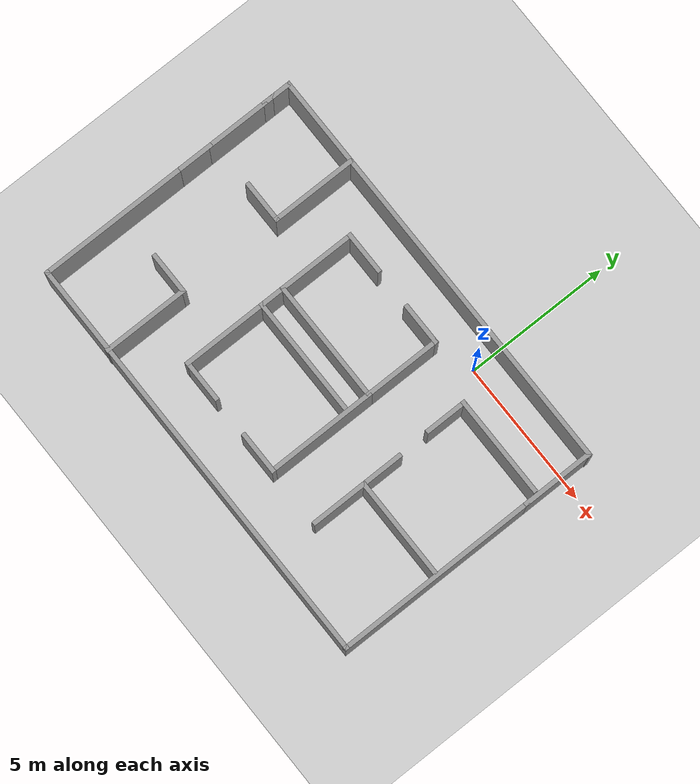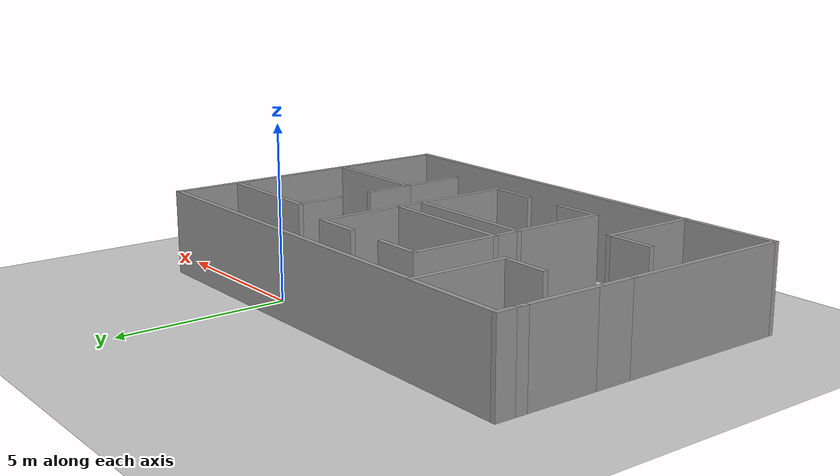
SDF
<sdf version="1.7">
 <world name="default">
  <scene><ambient>0.4 0.4 0.4 1</ambient><background>0.7 0.7 0.7 1</background><shadows>1</shadows></scene>
  <light name="sun" type="directional">
   <pose>0 0 10 0 -0 0</pose>
   <diffuse>0.8 0.8 0.8 1</diffuse>
   <specular>0.2 0.2 0.2 1</specular>
   <attenuation>
    <range>1000</range>
    <constant>0.9</constant>
    <linear>0.01</linear>
    <quadratic>0.001</quadratic>
   </attenuation>
   <direction>-0.5 0.1 -0.9</direction>
   <spot><inner_angle>0</inner_angle><outer_angle>0</outer_angle><falloff>0</falloff></spot>
  </light>
  <model name="ground_plane">
   <static>1</static>
   <link name="link">
    <collision name="collision">
     <geometry><plane><normal>0 0 1</normal><size>100 100</size></plane></geometry>
     <surface><friction><ode><mu>100</mu><mu2>50</mu2></ode></friction></surface>
    </collision>
    <visual name="visual">
     <cast_shadows>0</cast_shadows>
     <geometry><plane><normal>0 0 1</normal><size>100 100</size></plane></geometry>
     <material>
      <script><uri>file://media/materials/scripts/gazebo.material</uri><name>Gazebo/Grey</name></script>
     </material>
    </visual>
   </link>
  </model>
  <physics type="ode">
   <real_time_update_rate>0</real_time_update_rate>
   <max_step_size>0.001</max_step_size>
   <real_time_factor>1</real_time_factor>
   <ode>
    <solver>
     <type>quick</type>
     <iters>150</iters>
     <precon_iters>0</precon_iters>
     <sor>1.4</sor>
     <use_dynamic_moi_rescaling>1</use_dynamic_moi_rescaling>
    </solver>
    <constraints>
     <cfm>1e-05</cfm>
     <erp>0.2</erp>
     <contact_max_correcting_vel>2000</contact_max_correcting_vel>
     <contact_surface_layer>0.01</contact_surface_layer>
    </constraints>
   </ode>
  </physics>
  <gravity>0 0 -9.8</gravity>
  <magnetic_field>6e-06 2.3e-05 -4.2e-05</magnetic_field>
  <atmosphere type="adiabatic"/>
  <spherical_coordinates>
   <surface_model>EARTH_WGS84</surface_model>
   <latitude_deg>0</latitude_deg>
   <longitude_deg>0</longitude_deg>
   <elevation>0</elevation>
   <heading_deg>0</heading_deg>
  </spherical_coordinates>
  <model name="half_square">
   <pose>-2.87363 -3.76482 0 0 -0 0</pose>
   <link name="Wall_0">
    <collision name="Wall_0_Collision">
     <geometry><box><size>14.5 0.15 2.5</size></box></geometry>
     <pose>0 0 1.25 0 -0 0</pose>
    </collision>
    <visual name="Wall_0_Visual">
     <pose>0 0 1.25 0 -0 0</pose>
     <geometry><box><size>14.5 0.15 2.5</size></box></geometry>
     <material>
      <script><uri>file://media/materials/scripts/gazebo.material</uri><name>Gazebo/Grey</name></script>
      <ambient>1 1 1 1</ambient>
     </material>
     <meta><layer>0</layer></meta>
    </visual>
    <pose>-0.010056 -4.61503 0 0 -0 0</pose>
   </link>
   <link name="Wall_11">
    <collision name="Wall_11_Collision">
     <geometry><box><size>2.5 0.15 2.5</size></box></geometry>
     <pose>0 0 1.25 0 -0 0</pose>
    </collision>
    <visual name="Wall_11_Visual">
     <pose>0 0 1.25 0 -0 0</pose>
     <geometry><box><size>2.5 0.15 2.5</size></box></geometry>
     <material>
      <script><uri>file://media/materials/scripts/gazebo.material</uri><name>Gazebo/Grey</name></script>
      <ambient>1 1 1 1</ambient>
     </material>
     <meta><layer>0</layer></meta>
    </visual>
    <pose>7.16494 3.40997 0 0 -0 1.5708</pose>
   </link>
   <link name="Wall_13">
    <collision name="Wall_13_Collision">
     <geometry><box><size>0.730235 0.15 2.5</size></box></geometry>
     <pose>0 0 1.25 0 -0 0</pose>
    </collision>
    <visual name="Wall_13_Visual">
     <pose>0 0 1.25 0 -0 0</pose>
     <geometry><box><size>0.730235 0.15 2.5</size></box></geometry>
     <material>
      <script><uri>file://media/materials/scripts/gazebo.material</uri><name>Gazebo/Grey</name></script>
      <ambient>1 1 1 1</ambient>
     </material>
     <meta><layer>0</layer></meta>
    </visual>
    <pose>-7.18506 4.32491 0 0 -0 1.5708</pose>
   </link>
   <link name="Wall_14">
    <collision name="Wall_14_Collision">
     <geometry><box><size>14.5 0.15 2.5</size></box></geometry>
     <pose>0 0 1.25 0 -0 0</pose>
    </collision>
    <visual name="Wall_14_Visual">
     <pose>0 0 1.25 0 -0 0</pose>
     <geometry><box><size>14.5 0.15 2.5</size></box></geometry>
     <material>
      <script><uri>file://media/materials/scripts/gazebo.material</uri><name>Gazebo/Grey</name></script>
      <ambient>1 1 1 1</ambient>
     </material>
     <meta><layer>0</layer></meta>
    </visual>
    <pose>0.010057 4.61486 0 0 -0 0</pose>
   </link>
   <link name="Wall_2">
    <collision name="Wall_2_Collision">
     <geometry><box><size>5.25 0.15 2.5</size></box></geometry>
     <pose>0 0 1.25 0 -0 0</pose>
    </collision>
    <visual name="Wall_2_Visual">
     <pose>0 0 1.25 0 -0 0</pose>
     <geometry><box><size>5.25 0.15 2.5</size></box></geometry>
     <material>
      <script><uri>file://media/materials/scripts/gazebo.material</uri><name>Gazebo/Grey</name></script>
      <ambient>1 1 1 1</ambient>
     </material>
     <meta><layer>0</layer></meta>
    </visual>
    <pose>-7.18506 -2.06503 0 0 -0 1.5708</pose>
   </link>
   <link name="Wall_4">
    <collision name="Wall_4_Collision">
     <geometry><box><size>7 0.15 2.5</size></box></geometry>
     <pose>0 0 1.25 0 -0 0</pose>
    </collision>
    <visual name="Wall_4_Visual">
     <pose>0 0 1.25 0 -0 0</pose>
     <geometry><box><size>7 0.15 2.5</size></box></geometry>
     <material>
      <script><uri>file://media/materials/scripts/gazebo.material</uri><name>Gazebo/Grey</name></script>
      <ambient>1 1 1 1</ambient>
     </material>
     <meta><layer>0</layer></meta>
    </visual>
    <pose>7.16494 -1.19003 0 0 -0 1.5708</pose>
   </link>
   <link name="Wall_6">
    <collision name="Wall_6_Collision">
     <geometry><box><size>1.25 0.15 2.5</size></box></geometry>
     <pose>0 0 1.25 0 -0 0</pose>
    </collision>
    <visual name="Wall_6_Visual">
     <pose>0 0 1.25 0 -0 0</pose>
     <geometry><box><size>1.25 0.15 2.5</size></box></geometry>
     <material>
      <script><uri>file://media/materials/scripts/gazebo.material</uri><name>Gazebo/Grey</name></script>
      <ambient>1 1 1 1</ambient>
     </material>
     <meta><layer>0</layer></meta>
    </visual>
    <pose>-7.18506 1.03497 0 0 -0 1.5708</pose>
   </link>
   <link name="Wall_8">
    <collision name="Wall_8_Collision">
     <geometry><box><size>2.25 0.15 2.5</size></box></geometry>
     <pose>0 0 1.25 0 -0 0</pose>
    </collision>
    <visual name="Wall_8_Visual">
     <pose>0 0 1.25 0 -0 0</pose>
     <geometry><box><size>2.25 0.15 2.5</size></box></geometry>
     <material>
      <script><uri>file://media/materials/scripts/gazebo.material</uri><name>Gazebo/Grey</name></script>
      <ambient>1 1 1 1</ambient>
     </material>
     <meta><layer>0</layer></meta>
    </visual>
    <pose>-7.18506 2.63497 0 0 -0 1.5708</pose>
   </link>
   <link name="Wall_9">
    <collision name="Wall_9_Collision">
     <geometry><box><size>0.5 0.15 2.5</size></box></geometry>
     <pose>0 0 1.25 0 -0 0</pose>
    </collision>
    <visual name="Wall_9_Visual">
     <pose>0 0 1.25 0 -0 0</pose>
     <geometry><box><size>0.5 0.15 2.5</size></box></geometry>
     <material>
      <script><uri>file://media/materials/scripts/gazebo.material</uri><name>Gazebo/Grey</name></script>
      <ambient>1 1 1 1</ambient>
     </material>
     <meta><layer>0</layer></meta>
    </visual>
    <pose>-7.18506 3.85997 0 0 -0 1.5708</pose>
   </link>
   <static>1</static>
  </model>
  <plugin name="gazebo_occupancy_map" filename="libgazebo_2Dmap_plugin.so">
   <map_resolution>0.02</map_resolution>
   <map_height>0.7</map_height>
   <map_size_x>20</map_size_x>
   <map_size_y>20</map_size_y>
   <init_robot_x>0</init_robot_x>
   <init_robot_y>0</init_robot_y>
  </plugin>
  <model name="simple_office_walls">
   <pose>-2.13667 -3.77716 0 0 -0 0</pose>
   <link name="Wall_10">
    <collision name="Wall_10_Collision">
     <geometry><box><size>2.68911 0.15 2.5</size></box></geometry>
     <pose>0 0 1.25 0 -0 0</pose>
    </collision>
    <visual name="Wall_10_Visual">
     <pose>0 0 1.25 0 -0 0</pose>
     <geometry><box><size>2.68911 0.15 2.5</size></box></geometry>
     <material>
      <script><uri>file://media/materials/scripts/gazebo.material</uri><name>Gazebo/Grey</name></script>
      <ambient>1 1 1 1</ambient>
     </material>
     <meta><layer>0</layer></meta>
    </visual>
    <pose>0.948362 1.90366 0 0 -0 1.5708</pose>
   </link>
   <link name="Wall_12">
    <collision name="Wall_12_Collision">
     <geometry><box><size>2.70781 0.15 2.5</size></box></geometry>
     <pose>0 0 1.25 0 -0 0</pose>
    </collision>
    <visual name="Wall_12_Visual">
     <pose>0 0 1.25 0 -0 0</pose>
     <geometry><box><size>2.70781 0.15 2.5</size></box></geometry>
     <material>
      <script><uri>file://media/materials/scripts/gazebo.material</uri><name>Gazebo/Grey</name></script>
      <ambient>1 1 1 1</ambient>
     </material>
     <meta><layer>0</layer></meta>
    </visual>
    <pose>-3.15164 1.91301 0 0 -0 1.5708</pose>
   </link>
   <link name="Wall_13">
    <collision name="Wall_13_Collision">
     <geometry><box><size>1.5 0.15 2.5</size></box></geometry>
     <pose>0 0 1.25 0 -0 0</pose>
    </collision>
    <visual name="Wall_13_Visual">
     <pose>0 0 1.25 0 -0 0</pose>
     <geometry><box><size>1.5 0.15 2.5</size></box></geometry>
     <material>
      <script><uri>file://media/materials/scripts/gazebo.material</uri><name>Gazebo/Grey</name></script>
      <ambient>1 1 1 1</ambient>
     </material>
     <meta><layer>0</layer></meta>
    </visual>
    <pose>-2.47664 3.19192 0 0 -0 0</pose>
   </link>
   <link name="Wall_15">
    <collision name="Wall_15_Collision">
     <geometry><box><size>1.5 0.15 2.5</size></box></geometry>
     <pose>0 0 1.25 0 -0 0</pose>
    </collision>
    <visual name="Wall_15_Visual">
     <pose>0 0 1.25 0 -0 0</pose>
     <geometry><box><size>1.5 0.15 2.5</size></box></geometry>
     <material>
      <script><uri>file://media/materials/scripts/gazebo.material</uri><name>Gazebo/Grey</name></script>
      <ambient>1 1 1 1</ambient>
     </material>
     <meta><layer>0</layer></meta>
    </visual>
    <pose>0.273362 3.17322 0 0 -0 3.14159</pose>
   </link>
   <link name="Wall_17">
    <collision name="Wall_17_Collision">
     <geometry><box><size>3.81532 0.15 2.5</size></box></geometry>
     <pose>0 0 1.25 0 -0 0</pose>
    </collision>
    <visual name="Wall_17_Visual">
     <pose>0 0 1.25 0 -0 0</pose>
     <geometry><box><size>3.81532 0.15 2.5</size></box></geometry>
     <material>
      <script><uri>file://media/materials/scripts/gazebo.material</uri><name>Gazebo/Grey</name></script>
      <ambient>1 1 1 1</ambient>
     </material>
     <meta><layer>0</layer></meta>
    </visual>
    <pose>0.948362 -1.19855 0 0 -0 -1.5708</pose>
   </link>
   <link name="Wall_2">
    <collision name="Wall_2_Collision">
     <geometry><box><size>3.5 0.15 2.5</size></box></geometry>
     <pose>0 0 1.25 0 -0 0</pose>
    </collision>
    <visual name="Wall_2_Visual">
     <pose>0 0 1.25 0 -0 0</pose>
     <geometry><box><size>3.5 0.15 2.5</size></box></geometry>
     <material>
      <script><uri>file://media/materials/scripts/gazebo.material</uri><name>Gazebo/Grey</name></script>
      <ambient>1 1 1 1</ambient>
     </material>
     <meta><layer>0</layer></meta>
    </visual>
    <pose>4.58612 2.68254 0 0 -0 0</pose>
   </link>
   <link name="Wall_20">
    <collision name="Wall_20_Collision">
     <geometry><box><size>3.79219 0.15 2.5</size></box></geometry>
     <pose>0 0 1.25 0 -0 0</pose>
    </collision>
    <visual name="Wall_20_Visual">
     <pose>0 0 1.25 0 -0 0</pose>
     <geometry><box><size>3.79219 0.15 2.5</size></box></geometry>
     <material>
      <script><uri>file://media/materials/scripts/gazebo.material</uri><name>Gazebo/Grey</name></script>
      <ambient>1 1 1 1</ambient>
     </material>
     <meta><layer>0</layer></meta>
    </visual>
    <pose>-3.15164 -1.18699 0 0 -0 -1.5708</pose>
   </link>
   <link name="Wall_22">
    <collision name="Wall_22_Collision">
     <geometry><box><size>1.5 0.15 2.5</size></box></geometry>
     <pose>0 0 1.25 0 -0 0</pose>
    </collision>
    <visual name="Wall_22_Visual">
     <pose>0 0 1.25 0 -0 0</pose>
     <geometry><box><size>1.5 0.15 2.5</size></box></geometry>
     <material>
      <script><uri>file://media/materials/scripts/gazebo.material</uri><name>Gazebo/Grey</name></script>
      <ambient>1 1 1 1</ambient>
     </material>
     <meta><layer>0</layer></meta>
    </visual>
    <pose>-2.47664 -3.00808 0 0 -0 0</pose>
   </link>
   <link name="Wall_24">
    <collision name="Wall_24_Collision">
     <geometry><box><size>1.5 0.15 2.5</size></box></geometry>
     <pose>0 0 1.25 0 -0 0</pose>
    </collision>
    <visual name="Wall_24_Visual">
     <pose>0 0 1.25 0 -0 0</pose>
     <geometry><box><size>1.5 0.15 2.5</size></box></geometry>
     <material>
      <script><uri>file://media/materials/scripts/gazebo.material</uri><name>Gazebo/Grey</name></script>
      <ambient>1 1 1 1</ambient>
     </material>
     <meta><layer>0</layer></meta>
    </visual>
    <pose>0.273362 -3.03121 0 0 -0 3.14159</pose>
   </link>
   <link name="Wall_27">
    <collision name="Wall_27_Collision">
     <geometry><box><size>3 0.15 2.5</size></box></geometry>
     <pose>0 0 1.25 0 -0 0</pose>
    </collision>
    <visual name="Wall_27_Visual">
     <pose>0 0 1.25 0 -0 0</pose>
     <geometry><box><size>3 0.15 2.5</size></box></geometry>
     <material>
      <script><uri>file://media/materials/scripts/gazebo.material</uri><name>Gazebo/Grey</name></script>
      <ambient>1 1 1 1</ambient>
     </material>
     <meta><layer>0</layer></meta>
    </visual>
    <pose>-4.95484 -3.19705 0 0 -0 1.5708</pose>
   </link>
   <link name="Wall_29">
    <collision name="Wall_29_Collision">
     <geometry><box><size>1.5 0.15 2.5</size></box></geometry>
     <pose>0 0 1.25 0 -0 0</pose>
    </collision>
    <visual name="Wall_29_Visual">
     <pose>0 0 1.25 0 -0 0</pose>
     <geometry><box><size>1.5 0.15 2.5</size></box></geometry>
     <material>
      <script><uri>file://media/materials/scripts/gazebo.material</uri><name>Gazebo/Grey</name></script>
      <ambient>1 1 1 1</ambient>
     </material>
     <meta><layer>0</layer></meta>
    </visual>
    <pose>-5.62984 -1.77205 0 0 -0 3.14159</pose>
   </link>
   <link name="Wall_31">
    <collision name="Wall_31_Collision">
     <geometry><box><size>3 0.15 2.5</size></box></geometry>
     <pose>0 0 1.25 0 -0 0</pose>
    </collision>
    <visual name="Wall_31_Visual">
     <pose>0 0 1.25 0 -0 0</pose>
     <geometry><box><size>3 0.15 2.5</size></box></geometry>
     <material>
      <script><uri>file://media/materials/scripts/gazebo.material</uri><name>Gazebo/Grey</name></script>
      <ambient>1 1 1 1</ambient>
     </material>
     <meta><layer>0</layer></meta>
    </visual>
    <pose>-4.91332 3.19705 0 0 -0 1.5708</pose>
   </link>
   <link name="Wall_33">
    <collision name="Wall_33_Collision">
     <geometry><box><size>1.5 0.15 2.5</size></box></geometry>
     <pose>0 0 1.25 0 -0 0</pose>
    </collision>
    <visual name="Wall_33_Visual">
     <pose>0 0 1.25 0 -0 0</pose>
     <geometry><box><size>1.5 0.15 2.5</size></box></geometry>
     <material>
      <script><uri>file://media/materials/scripts/gazebo.material</uri><name>Gazebo/Grey</name></script>
      <ambient>1 1 1 1</ambient>
     </material>
     <meta><layer>0</layer></meta>
    </visual>
    <pose>-5.58832 1.77205 0 0 -0 3.14159</pose>
   </link>
   <link name="Wall_35">
    <collision name="Wall_35_Collision">
     <geometry><box><size>2 0.15 2.5</size></box></geometry>
     <pose>0 0 1.25 0 -0 0</pose>
    </collision>
    <visual name="Wall_35_Visual">
     <pose>0 0 1.25 0 -0 0</pose>
     <geometry><box><size>2 0.15 2.5</size></box></geometry>
     <material>
      <script><uri>file://media/materials/scripts/gazebo.material</uri><name>Gazebo/Grey</name></script>
      <ambient>1 1 1 1</ambient>
     </material>
     <meta><layer>0</layer></meta>
    </visual>
    <pose>2.95484 -2.09056 0 0 -0 -1.5708</pose>
   </link>
   <link name="Wall_37">
    <collision name="Wall_37_Collision">
     <geometry><box><size>4.25 0.15 2.5</size></box></geometry>
     <pose>0 0 1.25 0 -0 0</pose>
    </collision>
    <visual name="Wall_37_Visual">
     <pose>0 0 1.25 0 -0 0</pose>
     <geometry><box><size>4.25 0.15 2.5</size></box></geometry>
     <material>
      <script><uri>file://media/materials/scripts/gazebo.material</uri><name>Gazebo/Grey</name></script>
      <ambient>1 1 1 1</ambient>
     </material>
     <meta><layer>0</layer></meta>
    </visual>
    <pose>-1.10233 -0.18255 0 0 -0 0</pose>
   </link>
   <link name="Wall_4">
    <collision name="Wall_4_Collision">
     <geometry><box><size>1.5 0.15 2.5</size></box></geometry>
     <pose>0 0 1.25 0 -0 0</pose>
    </collision>
    <visual name="Wall_4_Visual">
     <pose>0 0 1.25 0 -0 0</pose>
     <geometry><box><size>1.5 0.15 2.5</size></box></geometry>
     <material>
      <script><uri>file://media/materials/scripts/gazebo.material</uri><name>Gazebo/Grey</name></script>
      <ambient>1 1 1 1</ambient>
     </material>
     <meta><layer>0</layer></meta>
    </visual>
    <pose>2.91112 2.00754 0 0 -0 -1.5708</pose>
   </link>
   <link name="Wall_6">
    <collision name="Wall_6_Collision">
     <geometry><box><size>1.5 0.15 2.5</size></box></geometry>
     <pose>0 0 1.25 0 -0 0</pose>
    </collision>
    <visual name="Wall_6_Visual">
     <pose>0 0 1.25 0 -0 0</pose>
     <geometry><box><size>1.5 0.15 2.5</size></box></geometry>
     <material>
      <script><uri>file://media/materials/scripts/gazebo.material</uri><name>Gazebo/Grey</name></script>
      <ambient>1 1 1 1</ambient>
     </material>
     <meta><layer>0</layer></meta>
    </visual>
    <pose>2.95484 -0.490561 0 0 -0 -1.5708</pose>
   </link>
   <link name="Wall_7">
    <collision name="Wall_7_Collision">
     <geometry><box><size>3.5 0.15 2.5</size></box></geometry>
     <pose>0 0 1.25 0 -0 0</pose>
    </collision>
    <visual name="Wall_7_Visual">
     <pose>0 0 1.25 0 -0 0</pose>
     <geometry><box><size>3.5 0.15 2.5</size></box></geometry>
     <material>
      <script><uri>file://media/materials/scripts/gazebo.material</uri><name>Gazebo/Grey</name></script>
      <ambient>1 1 1 1</ambient>
     </material>
     <meta><layer>0</layer></meta>
    </visual>
    <pose>4.62984 -1.16556 0 0 -0 0</pose>
   </link>
   <link name="Wall_9">
    <collision name="Wall_9_Collision">
     <geometry><box><size>4.25 0.15 2.5</size></box></geometry>
     <pose>0 0 1.25 0 -0 0</pose>
    </collision>
    <visual name="Wall_9_Visual">
     <pose>0 0 1.25 0 -0 0</pose>
     <geometry><box><size>4.25 0.15 2.5</size></box></geometry>
     <material>
      <script><uri>file://media/materials/scripts/gazebo.material</uri><name>Gazebo/Grey</name></script>
      <ambient>1 1 1 1</ambient>
     </material>
     <meta><layer>0</layer></meta>
    </visual>
    <pose>-1.10164 0.616618 0 0 -0 0</pose>
   </link>
   <static>1</static>
  </model>
  <plugin name="gazebo_occupancy_map" filename="libgazebo_2Dmap_plugin.so">
   <map_resolution>0.02</map_resolution>
   <map_height>0.7</map_height>
   <map_size_x>20</map_size_x>
   <map_size_y>20</map_size_y>
   <init_robot_x>0</init_robot_x>
   <init_robot_y>0</init_robot_y>
  </plugin>
 </world>
</sdf>
